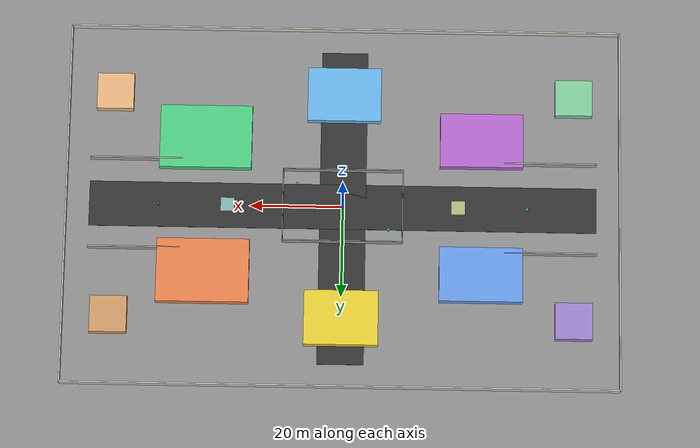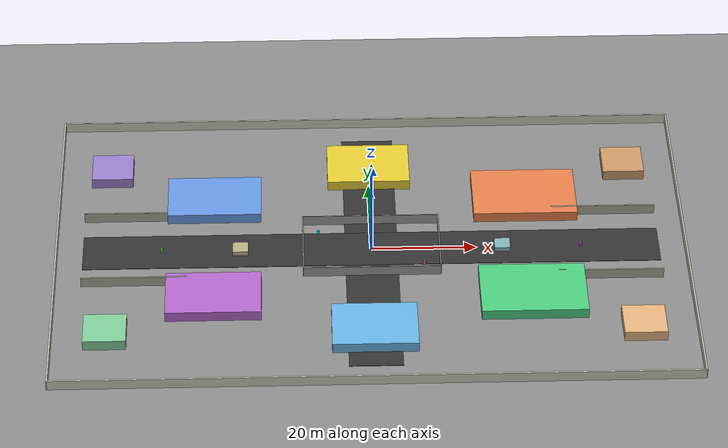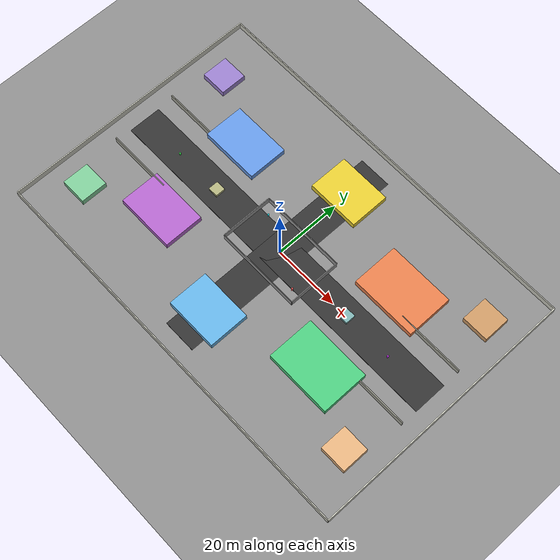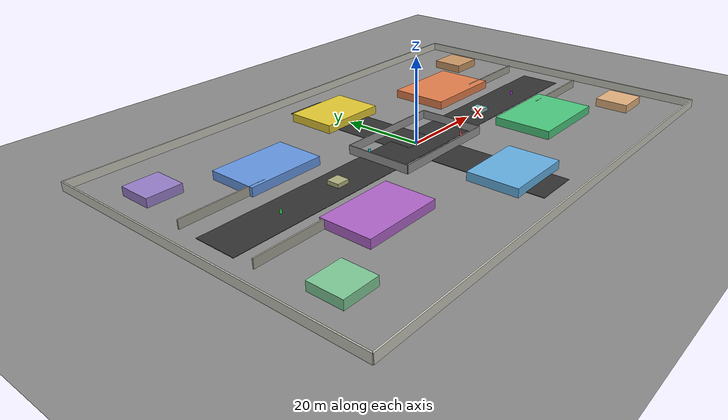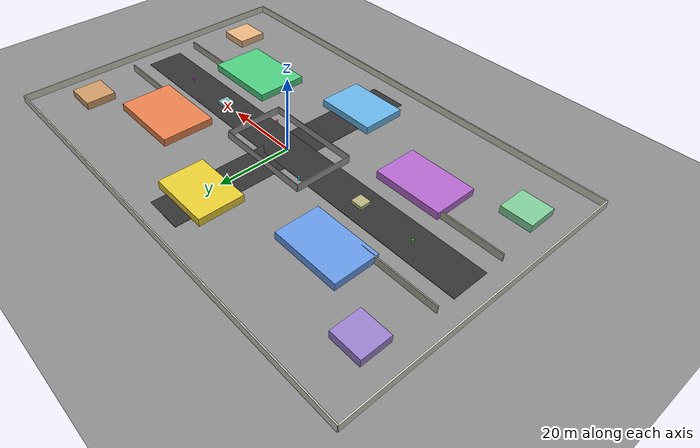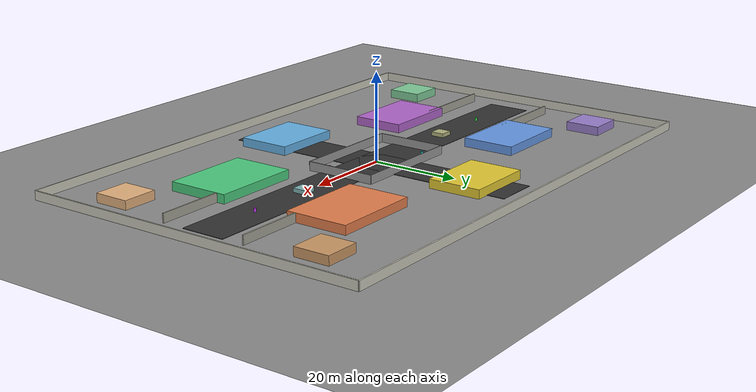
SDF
<?xml version="1.0" ?>
<sdf version="1.6">
  <world name="institute_city">
    <light name="sun" type="directional">
      <pose>0 0 20 0 0 0</pose>
      <diffuse>1 1 1 1</diffuse>
      <specular>0.2 0.2 0.2 1</specular>
      <direction>-0.4 0.1 -1</direction>
    </light>

    <model name="ground_plane">
      <static>true</static>
      <link name="link">
        <collision name="collision">
          <geometry>
            <plane>
              <normal>0 0 1</normal>
              <size>200 200</size>
            </plane>
          </geometry>
        </collision>
        <visual name="visual">
          <geometry>
            <plane>
              <normal>0 0 1</normal>
              <size>200 200</size>
            </plane>
          </geometry>
          <material>
            <ambient>0.55 0.55 0.55 1</ambient>
            <diffuse>0.55 0.55 0.55 1</diffuse>
            <specular>0.1 0.1 0.1 1</specular>
          </material>
        </visual>
      </link>
    </model>

    <!-- Perimeter walls -->
    <model name="perimeter_north">
      <static>true</static>
      <link name="link">
        <pose>0 40 1 0 0 0</pose>
        <collision name="collision">
          <geometry>
            <box>
              <size>120 0.3 2</size>
            </box>
          </geometry>
        </collision>
        <visual name="visual">
          <geometry>
            <box>
              <size>120 0.3 2</size>
            </box>
          </geometry>
          <material>
            <ambient>0.8 0.8 0.75 1</ambient>
            <diffuse>0.8 0.8 0.75 1</diffuse>
            <specular>0.1 0.1 0.1 1</specular>
          </material>
        </visual>
      </link>
    </model>

    <model name="perimeter_south">
      <static>true</static>
      <link name="link">
        <pose>0 -40 1 0 0 0</pose>
        <collision name="collision">
          <geometry>
            <box>
              <size>120 0.3 2</size>
            </box>
          </geometry>
        </collision>
        <visual name="visual">
          <geometry>
            <box>
              <size>120 0.3 2</size>
            </box>
          </geometry>
          <material>
            <ambient>0.8 0.8 0.75 1</ambient>
            <diffuse>0.8 0.8 0.75 1</diffuse>
            <specular>0.1 0.1 0.1 1</specular>
          </material>
        </visual>
      </link>
    </model>

    <model name="perimeter_west">
      <static>true</static>
      <link name="link">
        <pose>-60 0 1 0 0 0</pose>
        <collision name="collision">
          <geometry>
            <box>
              <size>0.3 80 2</size>
            </box>
          </geometry>
        </collision>
        <visual name="visual">
          <geometry>
            <box>
              <size>0.3 80 2</size>
            </box>
          </geometry>
          <material>
            <ambient>0.8 0.8 0.75 1</ambient>
            <diffuse>0.8 0.8 0.75 1</diffuse>
            <specular>0.1 0.1 0.1 1</specular>
          </material>
        </visual>
      </link>
    </model>

    <model name="perimeter_east">
      <static>true</static>
      <link name="link">
        <pose>60 0 1 0 0 0</pose>
        <collision name="collision">
          <geometry>
            <box>
              <size>0.3 80 2</size>
            </box>
          </geometry>
        </collision>
        <visual name="visual">
          <geometry>
            <box>
              <size>0.3 80 2</size>
            </box>
          </geometry>
          <material>
            <ambient>0.8 0.8 0.75 1</ambient>
            <diffuse>0.8 0.8 0.75 1</diffuse>
            <specular>0.1 0.1 0.1 1</specular>
          </material>
        </visual>
      </link>
    </model>

    <!-- Main roads (corridors) -->
    <model name="road_ns_center">
      <static>true</static>
      <link name="link">
        <pose>0 0 0.05 0 0 0</pose>
        <collision name="collision">
          <geometry>
            <box>
              <size>10 70 0.1</size>
            </box>
          </geometry>
        </collision>
        <visual name="visual">
          <geometry>
            <box>
              <size>10 70 0.1</size>
            </box>
          </geometry>
          <material>
            <ambient>0.2 0.2 0.2 1</ambient>
            <diffuse>0.2 0.2 0.2 1</diffuse>
            <specular>0.05 0.05 0.05 1</specular>
          </material>
        </visual>
      </link>
    </model>

    <model name="road_ew_center">
      <static>true</static>
      <link name="link">
        <pose>0 0 0.05 0 0 0</pose>
        <collision name="collision">
          <geometry>
            <box>
              <size>110 10 0.1</size>
            </box>
          </geometry>
        </collision>
        <visual name="visual">
          <geometry>
            <box>
              <size>110 10 0.1</size>
            </box>
          </geometry>
          <material>
            <ambient>0.2 0.2 0.2 1</ambient>
            <diffuse>0.2 0.2 0.2 1</diffuse>
            <specular>0.05 0.05 0.05 1</specular>
          </material>
        </visual>
      </link>
    </model>

    <!-- Institute buildings (blocks) -->
    <model name="admin_block">
      <static>true</static>
      <link name="link">
        <pose>-30 15 1 0 0 0</pose>
        <collision name="collision">
          <geometry>
            <box>
              <size>18 12 2</size>
            </box>
          </geometry>
        </collision>
        <visual name="visual">
          <geometry>
            <box>
              <size>18 12 2</size>
            </box>
          </geometry>
          <material>
            <ambient>0.4 0.6 0.9 1</ambient>
            <diffuse>0.4 0.6 0.9 1</diffuse>
            <specular>0.1 0.1 0.1 1</specular>
          </material>
        </visual>
      </link>
    </model>

    <model name="library">
      <static>true</static>
      <link name="link">
        <pose>-30 -15 1 0 0 0</pose>
        <collision name="collision">
          <geometry>
            <box>
              <size>18 12 2</size>
            </box>
          </geometry>
        </collision>
        <visual name="visual">
          <geometry>
            <box>
              <size>18 12 2</size>
            </box>
          </geometry>
          <material>
            <ambient>0.7 0.4 0.8 1</ambient>
            <diffuse>0.7 0.4 0.8 1</diffuse>
            <specular>0.1 0.1 0.1 1</specular>
          </material>
        </visual>
      </link>
    </model>

    <model name="lab_block">
      <static>true</static>
      <link name="link">
        <pose>30 15 1 0 0 0</pose>
        <collision name="collision">
          <geometry>
            <box>
              <size>20 14 2</size>
            </box>
          </geometry>
        </collision>
        <visual name="visual">
          <geometry>
            <box>
              <size>20 14 2</size>
            </box>
          </geometry>
          <material>
            <ambient>0.9 0.5 0.3 1</ambient>
            <diffuse>0.9 0.5 0.3 1</diffuse>
            <specular>0.1 0.1 0.1 1</specular>
          </material>
        </visual>
      </link>
    </model>

    <model name="hostel">
      <static>true</static>
      <link name="link">
        <pose>30 -15 1 0 0 0</pose>
        <collision name="collision">
          <geometry>
            <box>
              <size>20 14 2</size>
            </box>
          </geometry>
        </collision>
        <visual name="visual">
          <geometry>
            <box>
              <size>20 14 2</size>
            </box>
          </geometry>
          <material>
            <ambient>0.3 0.8 0.5 1</ambient>
            <diffuse>0.3 0.8 0.5 1</diffuse>
            <specular>0.1 0.1 0.1 1</specular>
          </material>
        </visual>
      </link>
    </model>

    <model name="auditorium">
      <static>true</static>
      <link name="link">
        <pose>0 25 1 0 0 0</pose>
        <collision name="collision">
          <geometry>
            <box>
              <size>16 12 2</size>
            </box>
          </geometry>
        </collision>
        <visual name="visual">
          <geometry>
            <box>
              <size>16 12 2</size>
            </box>
          </geometry>
          <material>
            <ambient>0.9 0.8 0.2 1</ambient>
            <diffuse>0.9 0.8 0.2 1</diffuse>
            <specular>0.1 0.1 0.1 1</specular>
          </material>
        </visual>
      </link>
    </model>

    <model name="canteen">
      <static>true</static>
      <link name="link">
        <pose>0 -25 1 0 0 0</pose>
        <collision name="collision">
          <geometry>
            <box>
              <size>16 12 2</size>
            </box>
          </geometry>
        </collision>
        <visual name="visual">
          <geometry>
            <box>
              <size>16 12 2</size>
            </box>
          </geometry>
          <material>
            <ambient>0.4 0.7 0.9 1</ambient>
            <diffuse>0.4 0.7 0.9 1</diffuse>
            <specular>0.1 0.1 0.1 1</specular>
          </material>
        </visual>
      </link>
    </model>

    <!-- Courtyard fence -->
    <model name="courtyard_north">
      <static>true</static>
      <link name="link">
        <pose>0 8 1 0 0 0</pose>
        <collision name="collision">
          <geometry>
            <box>
              <size>26 0.2 2</size>
            </box>
          </geometry>
        </collision>
        <visual name="visual">
          <geometry>
            <box>
              <size>26 0.2 2</size>
            </box>
          </geometry>
          <material>
            <ambient>0.6 0.6 0.6 1</ambient>
            <diffuse>0.6 0.6 0.6 1</diffuse>
            <specular>0.1 0.1 0.1 1</specular>
          </material>
        </visual>
      </link>
    </model>

    <model name="courtyard_south">
      <static>true</static>
      <link name="link">
        <pose>0 -8 1 0 0 0</pose>
        <collision name="collision">
          <geometry>
            <box>
              <size>26 0.2 2</size>
            </box>
          </geometry>
        </collision>
        <visual name="visual">
          <geometry>
            <box>
              <size>26 0.2 2</size>
            </box>
          </geometry>
          <material>
            <ambient>0.6 0.6 0.6 1</ambient>
            <diffuse>0.6 0.6 0.6 1</diffuse>
            <specular>0.1 0.1 0.1 1</specular>
          </material>
        </visual>
      </link>
    </model>

    <model name="courtyard_west">
      <static>true</static>
      <link name="link">
        <pose>-13 0 1 0 0 0</pose>
        <collision name="collision">
          <geometry>
            <box>
              <size>0.2 16 2</size>
            </box>
          </geometry>
        </collision>
        <visual name="visual">
          <geometry>
            <box>
              <size>0.2 16 2</size>
            </box>
          </geometry>
          <material>
            <ambient>0.6 0.6 0.6 1</ambient>
            <diffuse>0.6 0.6 0.6 1</diffuse>
            <specular>0.1 0.1 0.1 1</specular>
          </material>
        </visual>
      </link>
    </model>

    <model name="courtyard_east">
      <static>true</static>
      <link name="link">
        <pose>13 0 1 0 0 0</pose>
        <collision name="collision">
          <geometry>
            <box>
              <size>0.2 16 2</size>
            </box>
          </geometry>
        </collision>
        <visual name="visual">
          <geometry>
            <box>
              <size>0.2 16 2</size>
            </box>
          </geometry>
          <material>
            <ambient>0.6 0.6 0.6 1</ambient>
            <diffuse>0.6 0.6 0.6 1</diffuse>
            <specular>0.1 0.1 0.1 1</specular>
          </material>
        </visual>
      </link>
    </model>

    <!-- Static humans -->
    <model name="human_static_1">
      <static>true</static>
      <pose>-10 5 0 0 0 0</pose>
      <link name="link">
        <collision name="collision">
          <geometry>
            <cylinder>
              <radius>0.25</radius>
              <length>1.7</length>
            </cylinder>
          </geometry>
        </collision>
        <visual name="visual">
          <geometry>
            <cylinder>
              <radius>0.25</radius>
              <length>1.7</length>
            </cylinder>
          </geometry>
          <material>
            <ambient>0.1 0.85 0.9 1</ambient>
            <diffuse>0.1 0.85 0.9 1</diffuse>
            <specular>0.2 0.2 0.2 1</specular>
          </material>
        </visual>
      </link>
    </model>

    <model name="human_static_2">
      <static>true</static>
      <pose>10 -5 0 0 0 0</pose>
      <link name="link">
        <collision name="collision">
          <geometry>
            <cylinder>
              <radius>0.25</radius>
              <length>1.7</length>
            </cylinder>
          </geometry>
        </collision>
        <visual name="visual">
          <geometry>
            <cylinder>
              <radius>0.25</radius>
              <length>1.7</length>
            </cylinder>
          </geometry>
          <material>
            <ambient>0.95 0.35 0.35 1</ambient>
            <diffuse>0.95 0.35 0.35 1</diffuse>
            <specular>0.2 0.2 0.2 1</specular>
          </material>
        </visual>
      </link>
    </model>

    <!-- Additional internal obstacles for navigation complexity -->
    <model name="obstacle_1">
      <static>true</static>
      <link name="link">
        <pose>-25 0 0.5 0 0 0</pose>
        <collision name="collision">
          <geometry>
            <box>
              <size>3 3 1</size>
            </box>
          </geometry>
        </collision>
        <visual name="visual">
          <geometry>
            <box>
              <size>3 3 1</size>
            </box>
          </geometry>
          <material>
            <ambient>0.7 0.7 0.5 1</ambient>
            <diffuse>0.7 0.7 0.5 1</diffuse>
            <specular>0.1 0.1 0.1 1</specular>
          </material>
        </visual>
      </link>
    </model>

    <model name="obstacle_2">
      <static>true</static>
      <link name="link">
        <pose>25 0 0.5 0 0 0</pose>
        <collision name="collision">
          <geometry>
            <box>
              <size>3 3 1</size>
            </box>
          </geometry>
        </collision>
        <visual name="visual">
          <geometry>
            <box>
              <size>3 3 1</size>
            </box>
          </geometry>
          <material>
            <ambient>0.5 0.7 0.7 1</ambient>
            <diffuse>0.5 0.7 0.7 1</diffuse>
            <specular>0.1 0.1 0.1 1</specular>
          </material>
        </visual>
      </link>
    </model>

    <!-- Narrow corridors for navigation challenge -->
    <model name="corridor_wall_1">
      <static>true</static>
      <link name="link">
        <pose>-45 10 1 0 0 0</pose>
        <collision name="collision">
          <geometry>
            <box>
              <size>20 0.3 2</size>
            </box>
          </geometry>
        </collision>
        <visual name="visual">
          <geometry>
            <box>
              <size>20 0.3 2</size>
            </box>
          </geometry>
          <material>
            <ambient>0.65 0.65 0.6 1</ambient>
            <diffuse>0.65 0.65 0.6 1</diffuse>
            <specular>0.1 0.1 0.1 1</specular>
          </material>
        </visual>
      </link>
    </model>

    <model name="corridor_wall_2">
      <static>true</static>
      <link name="link">
        <pose>45 -10 1 0 0 0</pose>
        <collision name="collision">
          <geometry>
            <box>
              <size>20 0.3 2</size>
            </box>
          </geometry>
        </collision>
        <visual name="visual">
          <geometry>
            <box>
              <size>20 0.3 2</size>
            </box>
          </geometry>
          <material>
            <ambient>0.65 0.65 0.6 1</ambient>
            <diffuse>0.65 0.65 0.6 1</diffuse>
            <specular>0.1 0.1 0.1 1</specular>
          </material>
        </visual>
      </link>
    </model>

    <model name="corridor_wall_3">
      <static>true</static>
      <link name="link">
        <pose>-45 -10 1 0 0 0</pose>
        <collision name="collision">
          <geometry>
            <box>
              <size>20 0.3 2</size>
            </box>
          </geometry>
        </collision>
        <visual name="visual">
          <geometry>
            <box>
              <size>20 0.3 2</size>
            </box>
          </geometry>
          <material>
            <ambient>0.65 0.65 0.6 1</ambient>
            <diffuse>0.65 0.65 0.6 1</diffuse>
            <specular>0.1 0.1 0.1 1</specular>
          </material>
        </visual>
      </link>
    </model>

    <model name="corridor_wall_4">
      <static>true</static>
      <link name="link">
        <pose>45 10 1 0 0 0</pose>
        <collision name="collision">
          <geometry>
            <box>
              <size>20 0.3 2</size>
            </box>
          </geometry>
        </collision>
        <visual name="visual">
          <geometry>
            <box>
              <size>20 0.3 2</size>
            </box>
          </geometry>
          <material>
            <ambient>0.65 0.65 0.6 1</ambient>
            <diffuse>0.65 0.65 0.6 1</diffuse>
            <specular>0.1 0.1 0.1 1</specular>
          </material>
        </visual>
      </link>
    </model>

    <!-- Additional small buildings for complexity -->
    <model name="small_building_1">
      <static>true</static>
      <link name="link">
        <pose>-50 25 1 0 0 0</pose>
        <collision name="collision">
          <geometry>
            <box>
              <size>8 8 2</size>
            </box>
          </geometry>
        </collision>
        <visual name="visual">
          <geometry>
            <box>
              <size>8 8 2</size>
            </box>
          </geometry>
          <material>
            <ambient>0.6 0.5 0.8 1</ambient>
            <diffuse>0.6 0.5 0.8 1</diffuse>
            <specular>0.1 0.1 0.1 1</specular>
          </material>
        </visual>
      </link>
    </model>

    <model name="small_building_2">
      <static>true</static>
      <link name="link">
        <pose>50 25 1 0 0 0</pose>
        <collision name="collision">
          <geometry>
            <box>
              <size>8 8 2</size>
            </box>
          </geometry>
        </collision>
        <visual name="visual">
          <geometry>
            <box>
              <size>8 8 2</size>
            </box>
          </geometry>
          <material>
            <ambient>0.8 0.6 0.4 1</ambient>
            <diffuse>0.8 0.6 0.4 1</diffuse>
            <specular>0.1 0.1 0.1 1</specular>
          </material>
        </visual>
      </link>
    </model>

    <model name="small_building_3">
      <static>true</static>
      <link name="link">
        <pose>-50 -25 1 0 0 0</pose>
        <collision name="collision">
          <geometry>
            <box>
              <size>8 8 2</size>
            </box>
          </geometry>
        </collision>
        <visual name="visual">
          <geometry>
            <box>
              <size>8 8 2</size>
            </box>
          </geometry>
          <material>
            <ambient>0.5 0.8 0.6 1</ambient>
            <diffuse>0.5 0.8 0.6 1</diffuse>
            <specular>0.1 0.1 0.1 1</specular>
          </material>
        </visual>
      </link>
    </model>

    <model name="small_building_4">
      <static>true</static>
      <link name="link">
        <pose>50 -25 1 0 0 0</pose>
        <collision name="collision">
          <geometry>
            <box>
              <size>8 8 2</size>
            </box>
          </geometry>
        </collision>
        <visual name="visual">
          <geometry>
            <box>
              <size>8 8 2</size>
            </box>
          </geometry>
          <material>
            <ambient>0.9 0.7 0.5 1</ambient>
            <diffuse>0.9 0.7 0.5 1</diffuse>
            <specular>0.1 0.1 0.1 1</specular>
          </material>
        </visual>
      </link>
    </model>

    <!-- Moving humans (moved via ROS script) - 6 humans with different paths -->
    <model name="human_moving_1">
      <static>false</static>
      <pose>-40 0 0 0 0 0</pose>
      <link name="link">
        <inertial>
          <mass>60.0</mass>
          <inertia>
            <ixx>1</ixx>
            <iyy>1</iyy>
            <izz>1</izz>
          </inertia>
        </inertial>
        <collision name="collision">
          <geometry>
            <cylinder>
              <radius>0.25</radius>
              <length>1.7</length>
            </cylinder>
          </geometry>
        </collision>
        <visual name="visual">
          <geometry>
            <cylinder>
              <radius>0.25</radius>
              <length>1.7</length>
            </cylinder>
          </geometry>
          <material>
            <ambient>0.2 0.9 0.3 1</ambient>
            <diffuse>0.2 0.9 0.3 1</diffuse>
            <specular>0.2 0.2 0.2 1</specular>
          </material>
        </visual>
      </link>
    </model>

    <model name="human_moving_2">
      <static>false</static>
      <pose>40 0 0 0 0 0</pose>
      <link name="link">
        <inertial>
          <mass>60.0</mass>
          <inertia>
            <ixx>1</ixx>
            <iyy>1</iyy>
            <izz>1</izz>
          </inertia>
        </inertial>
        <collision name="collision">
          <geometry>
            <cylinder>
              <radius>0.25</radius>
              <length>1.7</length>
            </cylinder>
          </geometry>
        </collision>
        <visual name="visual">
          <geometry>
            <cylinder>
              <radius>0.25</radius>
              <length>1.7</length>
            </cylinder>
          </geometry>
          <material>
            <ambient>0.8 0.2 1.0 1</ambient>
            <diffuse>0.8 0.2 1.0 1</diffuse>
            <specular>0.2 0.2 0.2 1</specular>
          </material>
        </visual>
      </link>
    </model>

    <model name="human_moving_3">
      <static>false</static>
      <pose>0 20 0 0 0 0</pose>
      <link name="link">
        <inertial>
          <mass>60.0</mass>
          <inertia>
            <ixx>1</ixx>
            <iyy>1</iyy>
            <izz>1</izz>
          </inertia>
        </inertial>
        <collision name="collision">
          <geometry>
            <cylinder>
              <radius>0.25</radius>
              <length>1.7</length>
            </cylinder>
          </geometry>
        </collision>
        <visual name="visual">
          <geometry>
            <cylinder>
              <radius>0.25</radius>
              <length>1.7</length>
            </cylinder>
          </geometry>
          <material>
            <ambient>0.9 0.9 0.1 1</ambient>
            <diffuse>0.9 0.9 0.1 1</diffuse>
            <specular>0.2 0.2 0.2 1</specular>
          </material>
        </visual>
      </link>
    </model>

    <model name="human_moving_4">
      <static>false</static>
      <pose>0 -20 0 0 0 0</pose>
      <link name="link">
        <inertial>
          <mass>60.0</mass>
          <inertia>
            <ixx>1</ixx>
            <iyy>1</iyy>
            <izz>1</izz>
          </inertia>
        </inertial>
        <collision name="collision">
          <geometry>
            <cylinder>
              <radius>0.25</radius>
              <length>1.7</length>
            </cylinder>
          </geometry>
        </collision>
        <visual name="visual">
          <geometry>
            <cylinder>
              <radius>0.25</radius>
              <length>1.7</length>
            </cylinder>
          </geometry>
          <material>
            <ambient>0.1 0.5 0.9 1</ambient>
            <diffuse>0.1 0.5 0.9 1</diffuse>
            <specular>0.2 0.2 0.2 1</specular>
          </material>
        </visual>
      </link>
    </model>

    <model name="human_moving_5">
      <static>false</static>
      <pose>-30 15 0 0 0 0</pose>
      <link name="link">
        <inertial>
          <mass>60.0</mass>
          <inertia>
            <ixx>1</ixx>
            <iyy>1</iyy>
            <izz>1</izz>
          </inertia>
        </inertial>
        <collision name="collision">
          <geometry>
            <cylinder>
              <radius>0.25</radius>
              <length>1.7</length>
            </cylinder>
          </geometry>
        </collision>
        <visual name="visual">
          <geometry>
            <cylinder>
              <radius>0.25</radius>
              <length>1.7</length>
            </cylinder>
          </geometry>
          <material>
            <ambient>0.9 0.4 0.1 1</ambient>
            <diffuse>0.9 0.4 0.1 1</diffuse>
            <specular>0.2 0.2 0.2 1</specular>
          </material>
        </visual>
      </link>
    </model>

    <model name="human_moving_6">
      <static>false</static>
      <pose>30 -15 0 0 0 0</pose>
      <link name="link">
        <inertial>
          <mass>60.0</mass>
          <inertia>
            <ixx>1</ixx>
            <iyy>1</iyy>
            <izz>1</izz>
          </inertia>
        </inertial>
        <collision name="collision">
          <geometry>
            <cylinder>
              <radius>0.25</radius>
              <length>1.7</length>
            </cylinder>
          </geometry>
        </collision>
        <visual name="visual">
          <geometry>
            <cylinder>
              <radius>0.25</radius>
              <length>1.7</length>
            </cylinder>
          </geometry>
          <material>
            <ambient>0.1 0.9 0.7 1</ambient>
            <diffuse>0.1 0.9 0.7 1</diffuse>
            <specular>0.2 0.2 0.2 1</specular>
          </material>
        </visual>
      </link>
    </model>
  </world>
</sdf>
